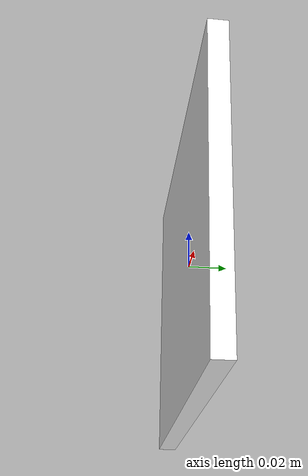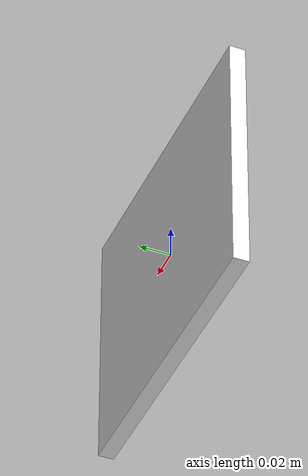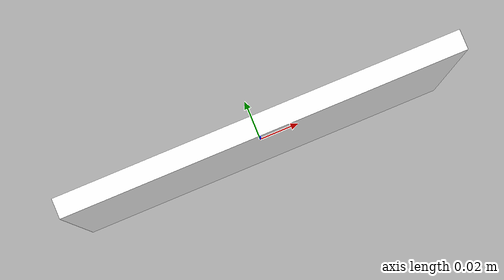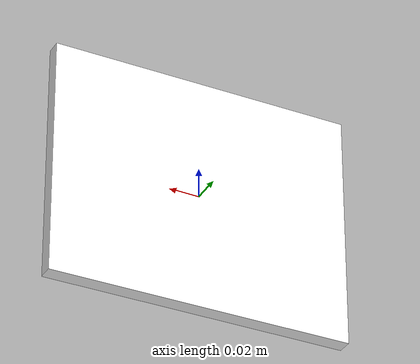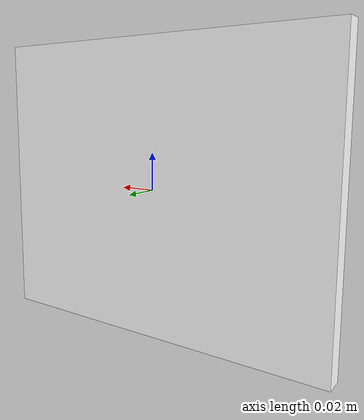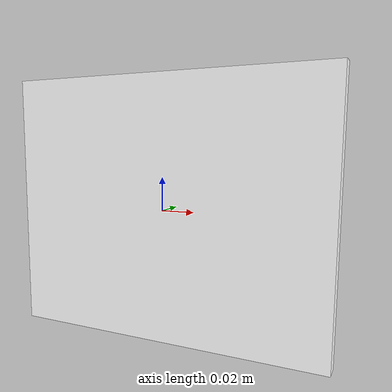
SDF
<?xml version="1.0"?>
<sdf version='1.4'>
    <model name="ball">
        <link name='ball_body'>
            <pose>0 0 0 0 0 0</pose>
            <inertial>
                <inertia>
                    <ixx>1e6</ixx>
                    <ixy>0</ixy>
                    <ixz>0</ixz>
                    <iyy>1e6</iyy>
                    <iyz>0</iyz>
                    <izz>1e6</izz>
                </inertia>
                <mass>1e6</mass>
            </inertial>
            <collision name='collision'>
                <pose>0 0 0.04 0 0 0</pose>
                <geometry>
                    <box>
                    <size>0.2 0.01 0.16</size>
                    </box>
                </geometry>
            </collision>
            <visual name='visual'>
                <geometry>
                    <box>
                    <size>0.2 0.01 0.16</size>
                    </box>
                </geometry>
                <material>
                    <ambient>0 0 1 1</ambient>
                    <diffuse>1 1 1 1</diffuse>
                    <specular>0 0.5 0 0</specular>
                    <emissive>0 0 0 1</emissive>
                </material>
            </visual>
        </link>
    </model>
</sdf>
